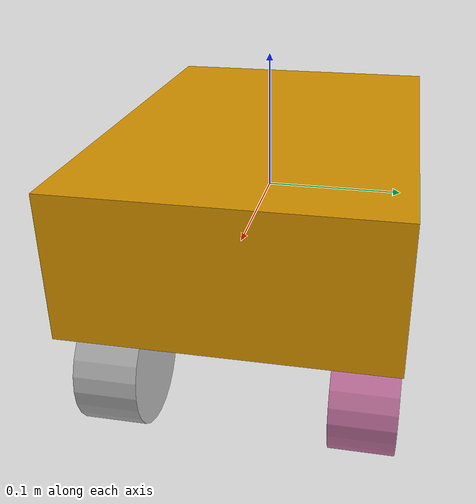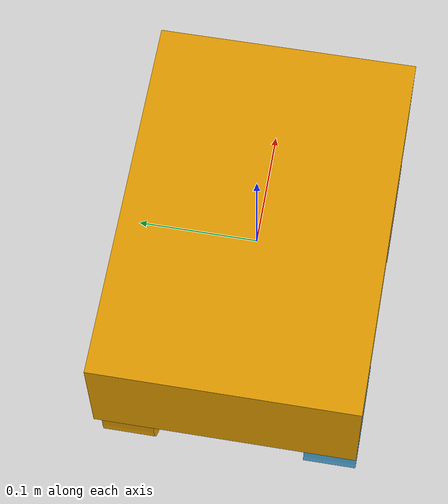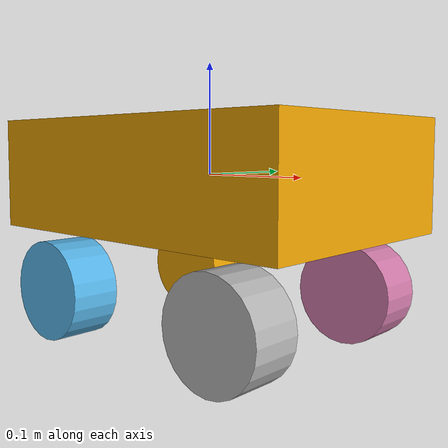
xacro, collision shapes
<?xml version="1.0"?>
<robot name="limo_ackerman" xmlns:xacro="http://ros.org/wiki/xacro">
  <!-- Arguments -->
  <xacro:arg name="robot_namespace" default="/" />
  <xacro:arg name="use_gazebo" default="true" />
  <xacro:arg name="enable_camera" default="false" />

  <!-- Includes -->
  <xacro:if value="$(arg use_gazebo)">
    <xacro:include filename="$(find limo_description)/urdf/limo_gazebo.gazebo"/>
  </xacro:if>

  <!-- Properties -->
  <xacro:property name="M_PI" value="3.14159"/>
  <xacro:property name="base_x_size" value="0.322"/>
  <xacro:property name="base_y_size" value="0.220"/>
  <xacro:property name="base_z_size" value="0.10"/>
  <xacro:property name="wheelbase" value="0.2"/>
  <xacro:property name="track" value="0.175"/>

  <xacro:property name="base_mass" value="2.1557"/>
  <xacro:property name="wheel_length" value="0.045"/>
  <xacro:property name="wheel_radius" value="0.045"/>

  <!-- centre roue = sol (base_footprint) + rayon -->
  <xacro:property name="wheel_vertical_offset" value="${-0.15 + wheel_radius}"/>

  <!-- Gazebo Harmonic: drive + sensors (topics Gazebo -> bridge ROS) -->
  <xacro:if value="$(arg use_gazebo)">
    <xacro:gazebo_diff_drive
      left_front_joint="front_left_wheel"
      left_rear_joint="rear_left_wheel"
      right_front_joint="front_right_wheel"
      right_rear_joint="rear_right_wheel"
      wheel_separation="${track}"
      wheel_radius="${wheel_radius}"
      model_name="limo" />
  </xacro:if>

  <xacro:wheel_friction_surface link_name="front_left_wheel_link"/>
  <xacro:wheel_friction_surface link_name="front_right_wheel_link"/>
  <xacro:wheel_friction_surface link_name="rear_left_wheel_link"/>
  <xacro:wheel_friction_surface link_name="rear_right_wheel_link"/>

  <xacro:if value="$(arg use_gazebo)">
    <xacro:gz_lidar frame_prefix="laser" model_name="limo"/>
    <xacro:gz_imu frame_prefix="imu" model_name="limo"/>
    <xacro:if value="$(arg enable_camera)">
      <xacro:gz_rgbd_camera frame_prefix="depth_camera" model_name="limo"/>
    </xacro:if>
  </xacro:if>

  <!-- Base link DOIT etre la racine physique (Gazebo) -->
  <link name="base_link">
    <visual>
      <origin xyz="0 0 -0.15" rpy="0 0 1.57"/>
      <geometry>
        <mesh filename="package://limo_description/meshes/limo_base.dae" scale="1 1 1"/>
      </geometry>
    </visual>

    <collision>
      <origin xyz="0 0 0" rpy="0 0 0"/>
      <geometry>
        <box size="${base_x_size} ${base_y_size} ${base_z_size}"/>
      </geometry>
    </collision>

    <inertial>
      <origin xyz="0 0 0"/>
      <mass value="${base_mass}"/>
      <inertia ixx="0.24" ixy="0" ixz="0" iyy="0.96" iyz="0" izz="0.96"/>
    </inertial>
  </link>

  <!-- base_footprint : frame TF uniquement, child de base_link -->
  <link name="base_footprint"/>
  <joint name="base_footprint_joint" type="fixed">
    <parent link="base_link"/>
    <child link="base_footprint"/>
    <origin xyz="0 0 -0.15" rpy="0 0 0"/>
  </joint>

  <!-- Laser frame -->
  <link name="laser_link"/>
  <joint name="laser_joint" type="fixed">
    <parent link="base_link"/>
    <child link="laser_link"/>
    <origin xyz="0.10 0.0 0.12" rpy="0 0 0"/>
  </joint>

  <!-- IMU frame -->
  <link name="imu_link"/>
  <joint name="imu_joint" type="fixed">
    <parent link="base_link"/>
    <child link="imu_link"/>
    <origin xyz="0.0 0.0 0.10" rpy="0 0 0"/>
  </joint>

  <!-- Depth camera frame (kept unconditionally for TF stability) -->
  <link name="depth_camera_link"/>
  <joint name="depth_camera_joint" type="fixed">
    <parent link="base_link"/>
    <child link="depth_camera_link"/>
    <origin xyz="0.12 0.0 0.14" rpy="0 0 0"/>
  </joint>

  <!-- Optical frame (REP-103: X right, Y down, Z forward) -->
  <link name="depth_camera_optical_frame"/>
  <joint name="depth_camera_optical_joint" type="fixed">
    <parent link="depth_camera_link"/>
    <child link="depth_camera_optical_frame"/>
    <origin xyz="0 0 0" rpy="-1.57079632679 0 -1.57079632679"/>
  </joint>

  <!-- FRONT LEFT wheel -->
  <link name="front_left_wheel_link">
    <inertial>
      <origin xyz="0 0 0"/>
      <mass value="0.5"/>
      <inertia ixx="0.01055" ixy="0" ixz="0" iyy="0.00075" iyz="0" izz="0.01055"/>
    </inertial>

    <visual>
      <origin xyz="0 0 0" rpy="0 0 0"/>
      <geometry>
        <mesh filename="package://limo_description/meshes/limo_wheel.dae"/>
      </geometry>
    </visual>

    <collision>
      <origin xyz="0 0 0" rpy="1.57079632679 0 0"/>
      <geometry>
        <cylinder length="${wheel_length}" radius="${wheel_radius}"/>
      </geometry>
    </collision>
  </link>

  <joint name="front_left_wheel" type="continuous">
    <parent link="base_link"/>
    <child link="front_left_wheel_link"/>
    <origin xyz="${wheelbase/2} ${track/2} ${wheel_vertical_offset}" rpy="0 0 0"/>
    <axis xyz="0 1 0"/>
    <dynamics damping="0.2" friction="0.0"/>
  </joint>

  <!-- FRONT RIGHT wheel -->
  <link name="front_right_wheel_link">
    <inertial>
      <origin xyz="0 0 0"/>
      <mass value="0.5"/>
      <inertia ixx="0.01055" ixy="0" ixz="0" iyy="0.00075" iyz="0" izz="0.01055"/>
    </inertial>

    <visual>
      <origin xyz="0 0 0" rpy="0 0 ${M_PI}"/>
      <geometry>
        <mesh filename="package://limo_description/meshes/limo_wheel.dae"/>
      </geometry>
    </visual>

    <collision>
      <origin xyz="0 0 0" rpy="1.57079632679 0 0"/>
      <geometry>
        <cylinder length="${wheel_length}" radius="${wheel_radius}"/>
      </geometry>
    </collision>
  </link>

  <joint name="front_right_wheel" type="continuous">
    <parent link="base_link"/>
    <child link="front_right_wheel_link"/>
    <origin xyz="${wheelbase/2} ${-track/2} ${wheel_vertical_offset}" rpy="0 0 0"/>
    <axis xyz="0 1 0"/>
    <dynamics damping="0.2" friction="0.0"/>
  </joint>

  <!-- Rear left wheel -->
  <link name="rear_left_wheel_link">
    <inertial>
      <origin xyz="0 0 0"/>
      <mass value="0.5"/>
      <inertia ixx="0.01055" ixy="0" ixz="0" iyy="0.00075" iyz="0" izz="0.01055"/>
    </inertial>

    <visual>
      <origin xyz="0 0 0" rpy="0 0 0"/>
      <geometry>
        <mesh filename="package://limo_description/meshes/limo_wheel.dae"/>
      </geometry>
    </visual>

    <collision>
      <origin xyz="0 0 0" rpy="1.57079632679 0 0"/>
      <geometry>
        <cylinder length="${wheel_length}" radius="${wheel_radius}"/>
      </geometry>
    </collision>
  </link>

  <joint name="rear_left_wheel" type="continuous">
    <parent link="base_link"/>
    <child link="rear_left_wheel_link"/>
    <origin xyz="${-wheelbase/2} ${track/2} ${wheel_vertical_offset}" rpy="0 0 0"/>
    <axis xyz="0 1 0"/>
    <dynamics damping="0.2" friction="0.0"/>
  </joint>

  <!-- Rear right wheel -->
  <link name="rear_right_wheel_link">
    <inertial>
      <origin xyz="0 0 0"/>
      <mass value="0.5"/>
      <inertia ixx="0.01055" ixy="0" ixz="0" iyy="0.00075" iyz="0" izz="0.01055"/>
    </inertial>

    <visual>
      <origin xyz="0 0 0" rpy="0 0 ${M_PI}"/>
      <geometry>
        <mesh filename="package://limo_description/meshes/limo_wheel.dae"/>
      </geometry>
    </visual>

    <collision>
      <origin xyz="0 0 0" rpy="1.57079632679 0 0"/>
      <geometry>
        <cylinder length="${wheel_length}" radius="${wheel_radius}"/>
      </geometry>
    </collision>
  </link>

  <joint name="rear_right_wheel" type="continuous">
    <parent link="base_link"/>
    <child link="rear_right_wheel_link"/>
    <origin xyz="${-wheelbase/2} ${-track/2} ${wheel_vertical_offset}" rpy="0 0 0"/>
    <axis xyz="0 1 0"/>
    <dynamics damping="0.2" friction="0.0"/>
  </joint>
</robot>
